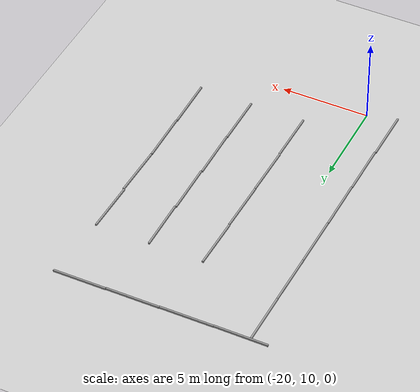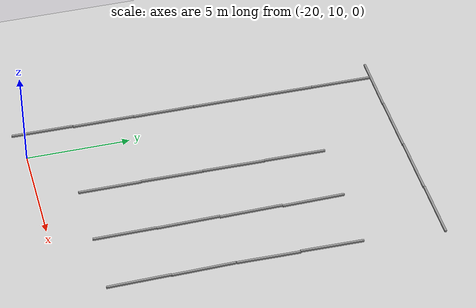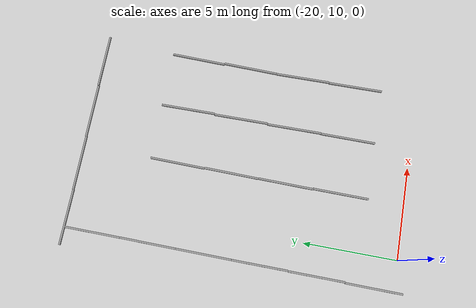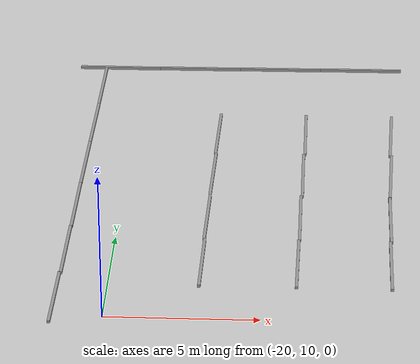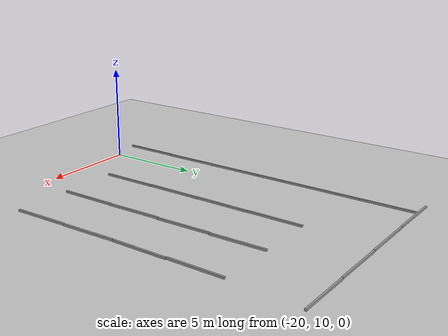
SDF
<sdf version="1.6">
 <world name="default">
  <model name="ground_plane">
   <static>1</static>
   <link name="link">
    <collision name="collision">
     <geometry><plane><normal>0 0 1</normal><size>100 100</size></plane></geometry>
     <surface>
      <contact><collide_bitmask>65535</collide_bitmask></contact>
      <friction><ode><mu>100</mu><mu2>50</mu2></ode></friction>
     </surface>
    </collision>
    <visual name="visual">
     <cast_shadows>0</cast_shadows>
     <geometry><plane><normal>0 0 1</normal><size>100 100</size></plane></geometry>
     <material>
      <script><uri>file://media/materials/scripts/gazebo.material</uri><name>Gazebo/Grey</name></script>
     </material>
    </visual>
   </link>
  </model>
  <model name="ruler_y_0_clone_clone_clone">
   <link name="link_2">
    <inertial>
     <mass>1</mass>
     <inertia>
      <ixx>0.166667</ixx>
      <ixy>0</ixy>
      <ixz>0</ixz>
      <iyy>0.166667</iyy>
      <iyz>0</iyz>
      <izz>0.166667</izz>
     </inertia>
    </inertial>
    <visual name="visual">
     <geometry><box><size>0.1 3 0.1</size></box></geometry>
     <material>
      <lighting>1</lighting>
      <script><uri>file://media/materials/scripts/gazebo.material</uri><name>Gazebo/Grey</name></script>
      <shader type="vertex"><normal_map>__default__</normal_map></shader>
      <ambient>0.3 0.3 0.3 1</ambient>
      <diffuse>0.7 0.7 0.7 1</diffuse>
      <specular>0.01 0.01 0.01 1</specular>
      <emissive>0 0 0 1</emissive>
     </material>
    </visual>
    <collision name="collision">
     <geometry><box><size>0.1 3 0.1</size></box></geometry>
     <surface>
      <friction>
       <ode><mu>1</mu><mu2>1</mu2><fdir1>0 0 0</fdir1><slip1>0</slip1><slip2>0</slip2></ode>
       <torsional>
        <coefficient>1</coefficient>
        <patch_radius>0</patch_radius>
        <surface_radius>0</surface_radius>
        <use_patch_radius>1</use_patch_radius>
        <ode><slip>0</slip></ode>
       </torsional>
      </friction>
      <bounce><restitution_coefficient>0</restitution_coefficient><threshold>1e+06</threshold></bounce>
      <contact>
       <collide_without_contact>0</collide_without_contact>
       <collide_without_contact_bitmask>1</collide_without_contact_bitmask>
       <collide_bitmask>1</collide_bitmask>
       <ode>
        <soft_cfm>0</soft_cfm>
        <soft_erp>0.2</soft_erp>
        <kp>1e+13</kp>
        <kd>1</kd>
        <max_vel>0.01</max_vel>
        <min_depth>0</min_depth>
       </ode>
       <bullet>
        <split_impulse>1</split_impulse>
        <split_impulse_penetration_threshold>-0.01</split_impulse_penetration_threshold>
        <soft_cfm>0</soft_cfm>
        <soft_erp>0.2</soft_erp>
        <kp>1e+13</kp>
        <kd>1</kd>
       </bullet>
      </contact>
     </surface>
    </collision>
   </link>
   <static>0</static>
   <plugin name="ruler_y" filename="ruler_y"/>
   <pose>-10.8644 13.4285 0.049602 -0.000266 6e-06 0.008758</pose>
  </model>
  <model name="ruler_y_0_clone_clone_clone_clone">
   <link name="link_2">
    <inertial>
     <mass>1</mass>
     <inertia>
      <ixx>0.166667</ixx>
      <ixy>0</ixy>
      <ixz>0</ixz>
      <iyy>0.166667</iyy>
      <iyz>0</iyz>
      <izz>0.166667</izz>
     </inertia>
    </inertial>
    <visual name="visual">
     <geometry><box><size>0.1 3 0.1</size></box></geometry>
     <material>
      <lighting>1</lighting>
      <script><uri>file://media/materials/scripts/gazebo.material</uri><name>Gazebo/Grey</name></script>
      <shader type="vertex"><normal_map>__default__</normal_map></shader>
      <ambient>0.3 0.3 0.3 1</ambient>
      <diffuse>0.7 0.7 0.7 1</diffuse>
      <specular>0.01 0.01 0.01 1</specular>
      <emissive>0 0 0 1</emissive>
     </material>
    </visual>
    <collision name="collision">
     <geometry><box><size>0.1 3 0.1</size></box></geometry>
     <surface>
      <friction>
       <ode><mu>1</mu><mu2>1</mu2><fdir1>0 0 0</fdir1><slip1>0</slip1><slip2>0</slip2></ode>
       <torsional>
        <coefficient>1</coefficient>
        <patch_radius>0</patch_radius>
        <surface_radius>0</surface_radius>
        <use_patch_radius>1</use_patch_radius>
        <ode><slip>0</slip></ode>
       </torsional>
      </friction>
      <bounce><restitution_coefficient>0</restitution_coefficient><threshold>1e+06</threshold></bounce>
      <contact>
       <collide_without_contact>0</collide_without_contact>
       <collide_without_contact_bitmask>1</collide_without_contact_bitmask>
       <collide_bitmask>1</collide_bitmask>
       <ode>
        <soft_cfm>0</soft_cfm>
        <soft_erp>0.2</soft_erp>
        <kp>1e+13</kp>
        <kd>1</kd>
        <max_vel>0.01</max_vel>
        <min_depth>0</min_depth>
       </ode>
       <bullet>
        <split_impulse>1</split_impulse>
        <split_impulse_penetration_threshold>-0.01</split_impulse_penetration_threshold>
        <soft_cfm>0</soft_cfm>
        <soft_erp>0.2</soft_erp>
        <kp>1e+13</kp>
        <kd>1</kd>
       </bullet>
      </contact>
     </surface>
    </collision>
   </link>
   <static>0</static>
   <plugin name="ruler_y" filename="ruler_y"/>
   <pose>-10.8624 16.4287 0.049602 -0.000266 6e-06 0.009491</pose>
  </model>
  <model name="ruler_y_0_clone_clone_clone_clone_clone">
   <link name="link_2">
    <inertial>
     <mass>1</mass>
     <inertia>
      <ixx>0.166667</ixx>
      <ixy>0</ixy>
      <ixz>0</ixz>
      <iyy>0.166667</iyy>
      <iyz>0</iyz>
      <izz>0.166667</izz>
     </inertia>
    </inertial>
    <visual name="visual">
     <geometry><box><size>0.1 3 0.1</size></box></geometry>
     <material>
      <lighting>1</lighting>
      <script><uri>file://media/materials/scripts/gazebo.material</uri><name>Gazebo/Grey</name></script>
      <shader type="vertex"><normal_map>__default__</normal_map></shader>
      <ambient>0.3 0.3 0.3 1</ambient>
      <diffuse>0.7 0.7 0.7 1</diffuse>
      <specular>0.01 0.01 0.01 1</specular>
      <emissive>0 0 0 1</emissive>
     </material>
    </visual>
    <collision name="collision">
     <geometry><box><size>0.1 3 0.1</size></box></geometry>
     <surface>
      <friction>
       <ode><mu>1</mu><mu2>1</mu2><fdir1>0 0 0</fdir1><slip1>0</slip1><slip2>0</slip2></ode>
       <torsional>
        <coefficient>1</coefficient>
        <patch_radius>0</patch_radius>
        <surface_radius>0</surface_radius>
        <use_patch_radius>1</use_patch_radius>
        <ode><slip>0</slip></ode>
       </torsional>
      </friction>
      <bounce><restitution_coefficient>0</restitution_coefficient><threshold>1e+06</threshold></bounce>
      <contact>
       <collide_without_contact>0</collide_without_contact>
       <collide_without_contact_bitmask>1</collide_without_contact_bitmask>
       <collide_bitmask>1</collide_bitmask>
       <ode>
        <soft_cfm>0</soft_cfm>
        <soft_erp>0.2</soft_erp>
        <kp>1e+13</kp>
        <kd>1</kd>
        <max_vel>0.01</max_vel>
        <min_depth>0</min_depth>
       </ode>
       <bullet>
        <split_impulse>1</split_impulse>
        <split_impulse_penetration_threshold>-0.01</split_impulse_penetration_threshold>
        <soft_cfm>0</soft_cfm>
        <soft_erp>0.2</soft_erp>
        <kp>1e+13</kp>
        <kd>1</kd>
       </bullet>
      </contact>
     </surface>
    </collision>
   </link>
   <static>0</static>
   <plugin name="ruler_y" filename="ruler_y"/>
   <pose>-10.8269 19.4488 0.049602 0.000266 6e-06 -0.02517</pose>
  </model>
  <model name="ruler_y_0_clone_clone_clone_clone_clone_clone">
   <link name="link_2">
    <inertial>
     <mass>1</mass>
     <inertia>
      <ixx>0.166667</ixx>
      <ixy>0</ixy>
      <ixz>0</ixz>
      <iyy>0.166667</iyy>
      <iyz>0</iyz>
      <izz>0.166667</izz>
     </inertia>
    </inertial>
    <visual name="visual">
     <geometry><box><size>0.1 3 0.1</size></box></geometry>
     <material>
      <lighting>1</lighting>
      <script><uri>file://media/materials/scripts/gazebo.material</uri><name>Gazebo/Grey</name></script>
      <shader type="vertex"><normal_map>__default__</normal_map></shader>
      <ambient>0.3 0.3 0.3 1</ambient>
      <diffuse>0.7 0.7 0.7 1</diffuse>
      <specular>0.01 0.01 0.01 1</specular>
      <emissive>0 0 0 1</emissive>
     </material>
    </visual>
    <collision name="collision">
     <geometry><box><size>0.1 3 0.1</size></box></geometry>
     <surface>
      <friction>
       <ode><mu>1</mu><mu2>1</mu2><fdir1>0 0 0</fdir1><slip1>0</slip1><slip2>0</slip2></ode>
       <torsional>
        <coefficient>1</coefficient>
        <patch_radius>0</patch_radius>
        <surface_radius>0</surface_radius>
        <use_patch_radius>1</use_patch_radius>
        <ode><slip>0</slip></ode>
       </torsional>
      </friction>
      <bounce><restitution_coefficient>0</restitution_coefficient><threshold>1e+06</threshold></bounce>
      <contact>
       <collide_without_contact>0</collide_without_contact>
       <collide_without_contact_bitmask>1</collide_without_contact_bitmask>
       <collide_bitmask>1</collide_bitmask>
       <ode>
        <soft_cfm>0</soft_cfm>
        <soft_erp>0.2</soft_erp>
        <kp>1e+13</kp>
        <kd>1</kd>
        <max_vel>0.01</max_vel>
        <min_depth>0</min_depth>
       </ode>
       <bullet>
        <split_impulse>1</split_impulse>
        <split_impulse_penetration_threshold>-0.01</split_impulse_penetration_threshold>
        <soft_cfm>0</soft_cfm>
        <soft_erp>0.2</soft_erp>
        <kp>1e+13</kp>
        <kd>1</kd>
       </bullet>
      </contact>
     </surface>
    </collision>
   </link>
   <static>0</static>
   <plugin name="ruler_y" filename="ruler_y"/>
   <pose>-10.8 22.4556 0.049602 -0.000266 -6e-06 -0.024914</pose>
  </model>
  <model name="ruler_y_0_clone_0_clone_clone_clone">
   <link name="link_2">
    <inertial>
     <mass>1</mass>
     <inertia>
      <ixx>0.166667</ixx>
      <ixy>0</ixy>
      <ixz>0</ixz>
      <iyy>0.166667</iyy>
      <iyz>0</iyz>
      <izz>0.166667</izz>
     </inertia>
    </inertial>
    <visual name="visual">
     <geometry><box><size>0.1 3 0.1</size></box></geometry>
     <material>
      <lighting>1</lighting>
      <script><uri>file://media/materials/scripts/gazebo.material</uri><name>Gazebo/Grey</name></script>
      <shader type="vertex"><normal_map>__default__</normal_map></shader>
      <ambient>0.3 0.3 0.3 1</ambient>
      <diffuse>0.7 0.7 0.7 1</diffuse>
      <specular>0.01 0.01 0.01 1</specular>
      <emissive>0 0 0 1</emissive>
     </material>
    </visual>
    <collision name="collision">
     <geometry><box><size>0.1 3 0.1</size></box></geometry>
     <surface>
      <friction>
       <ode><mu>1</mu><mu2>1</mu2><fdir1>0 0 0</fdir1><slip1>0</slip1><slip2>0</slip2></ode>
       <torsional>
        <coefficient>1</coefficient>
        <patch_radius>0</patch_radius>
        <surface_radius>0</surface_radius>
        <use_patch_radius>1</use_patch_radius>
        <ode><slip>0</slip></ode>
       </torsional>
      </friction>
      <bounce><restitution_coefficient>0</restitution_coefficient><threshold>1e+06</threshold></bounce>
      <contact>
       <collide_without_contact>0</collide_without_contact>
       <collide_without_contact_bitmask>1</collide_without_contact_bitmask>
       <collide_bitmask>1</collide_bitmask>
       <ode>
        <soft_cfm>0</soft_cfm>
        <soft_erp>0.2</soft_erp>
        <kp>1e+13</kp>
        <kd>1</kd>
        <max_vel>0.01</max_vel>
        <min_depth>0</min_depth>
       </ode>
       <bullet>
        <split_impulse>1</split_impulse>
        <split_impulse_penetration_threshold>-0.01</split_impulse_penetration_threshold>
        <soft_cfm>0</soft_cfm>
        <soft_erp>0.2</soft_erp>
        <kp>1e+13</kp>
        <kd>1</kd>
       </bullet>
      </contact>
     </surface>
    </collision>
   </link>
   <static>0</static>
   <plugin name="ruler_y" filename="ruler_y"/>
   <pose>-13.9163 13.4405 0.049602 -0.000266 6e-06 -0.003403</pose>
  </model>
  <model name="ruler_y_0_clone_0_clone_clone_clone_clone">
   <link name="link_2">
    <inertial>
     <mass>1</mass>
     <inertia>
      <ixx>0.166667</ixx>
      <ixy>0</ixy>
      <ixz>0</ixz>
      <iyy>0.166667</iyy>
      <iyz>0</iyz>
      <izz>0.166667</izz>
     </inertia>
    </inertial>
    <visual name="visual">
     <geometry><box><size>0.1 3 0.1</size></box></geometry>
     <material>
      <lighting>1</lighting>
      <script><uri>file://media/materials/scripts/gazebo.material</uri><name>Gazebo/Grey</name></script>
      <shader type="vertex"><normal_map>__default__</normal_map></shader>
      <ambient>0.3 0.3 0.3 1</ambient>
      <diffuse>0.7 0.7 0.7 1</diffuse>
      <specular>0.01 0.01 0.01 1</specular>
      <emissive>0 0 0 1</emissive>
     </material>
    </visual>
    <collision name="collision">
     <geometry><box><size>0.1 3 0.1</size></box></geometry>
     <surface>
      <friction>
       <ode><mu>1</mu><mu2>1</mu2><fdir1>0 0 0</fdir1><slip1>0</slip1><slip2>0</slip2></ode>
       <torsional>
        <coefficient>1</coefficient>
        <patch_radius>0</patch_radius>
        <surface_radius>0</surface_radius>
        <use_patch_radius>1</use_patch_radius>
        <ode><slip>0</slip></ode>
       </torsional>
      </friction>
      <bounce><restitution_coefficient>0</restitution_coefficient><threshold>1e+06</threshold></bounce>
      <contact>
       <collide_without_contact>0</collide_without_contact>
       <collide_without_contact_bitmask>1</collide_without_contact_bitmask>
       <collide_bitmask>1</collide_bitmask>
       <ode>
        <soft_cfm>0</soft_cfm>
        <soft_erp>0.2</soft_erp>
        <kp>1e+13</kp>
        <kd>1</kd>
        <max_vel>0.01</max_vel>
        <min_depth>0</min_depth>
       </ode>
       <bullet>
        <split_impulse>1</split_impulse>
        <split_impulse_penetration_threshold>-0.01</split_impulse_penetration_threshold>
        <soft_cfm>0</soft_cfm>
        <soft_erp>0.2</soft_erp>
        <kp>1e+13</kp>
        <kd>1</kd>
       </bullet>
      </contact>
     </surface>
    </collision>
   </link>
   <static>0</static>
   <plugin name="ruler_y" filename="ruler_y"/>
   <pose>-13.898 16.4429 0.049602 0.000266 -6e-06 0.006238</pose>
  </model>
  <model name="ruler_y_0_clone_0_clone_clone_clone_clone_clone">
   <link name="link_2">
    <inertial>
     <mass>1</mass>
     <inertia>
      <ixx>0.166667</ixx>
      <ixy>0</ixy>
      <ixz>0</ixz>
      <iyy>0.166667</iyy>
      <iyz>0</iyz>
      <izz>0.166667</izz>
     </inertia>
    </inertial>
    <visual name="visual">
     <geometry><box><size>0.1 3 0.1</size></box></geometry>
     <material>
      <lighting>1</lighting>
      <script><uri>file://media/materials/scripts/gazebo.material</uri><name>Gazebo/Grey</name></script>
      <shader type="vertex"><normal_map>__default__</normal_map></shader>
      <ambient>0.3 0.3 0.3 1</ambient>
      <diffuse>0.7 0.7 0.7 1</diffuse>
      <specular>0.01 0.01 0.01 1</specular>
      <emissive>0 0 0 1</emissive>
     </material>
    </visual>
    <collision name="collision">
     <geometry><box><size>0.1 3 0.1</size></box></geometry>
     <surface>
      <friction>
       <ode><mu>1</mu><mu2>1</mu2><fdir1>0 0 0</fdir1><slip1>0</slip1><slip2>0</slip2></ode>
       <torsional>
        <coefficient>1</coefficient>
        <patch_radius>0</patch_radius>
        <surface_radius>0</surface_radius>
        <use_patch_radius>1</use_patch_radius>
        <ode><slip>0</slip></ode>
       </torsional>
      </friction>
      <bounce><restitution_coefficient>0</restitution_coefficient><threshold>1e+06</threshold></bounce>
      <contact>
       <collide_without_contact>0</collide_without_contact>
       <collide_without_contact_bitmask>1</collide_without_contact_bitmask>
       <collide_bitmask>1</collide_bitmask>
       <ode>
        <soft_cfm>0</soft_cfm>
        <soft_erp>0.2</soft_erp>
        <kp>1e+13</kp>
        <kd>1</kd>
        <max_vel>0.01</max_vel>
        <min_depth>0</min_depth>
       </ode>
       <bullet>
        <split_impulse>1</split_impulse>
        <split_impulse_penetration_threshold>-0.01</split_impulse_penetration_threshold>
        <soft_cfm>0</soft_cfm>
        <soft_erp>0.2</soft_erp>
        <kp>1e+13</kp>
        <kd>1</kd>
       </bullet>
      </contact>
     </surface>
    </collision>
   </link>
   <static>0</static>
   <plugin name="ruler_y" filename="ruler_y"/>
   <pose>-13.8712 19.4478 0.049602 0.000266 -6e-06 0.006238</pose>
  </model>
  <model name="ruler_y_0_clone_0_clone_clone_clone_clone_clone_clone">
   <link name="link_2">
    <inertial>
     <mass>1</mass>
     <inertia>
      <ixx>0.166667</ixx>
      <ixy>0</ixy>
      <ixz>0</ixz>
      <iyy>0.166667</iyy>
      <iyz>0</iyz>
      <izz>0.166667</izz>
     </inertia>
    </inertial>
    <visual name="visual">
     <geometry><box><size>0.1 3 0.1</size></box></geometry>
     <material>
      <lighting>1</lighting>
      <script><uri>file://media/materials/scripts/gazebo.material</uri><name>Gazebo/Grey</name></script>
      <shader type="vertex"><normal_map>__default__</normal_map></shader>
      <ambient>0.3 0.3 0.3 1</ambient>
      <diffuse>0.7 0.7 0.7 1</diffuse>
      <specular>0.01 0.01 0.01 1</specular>
      <emissive>0 0 0 1</emissive>
     </material>
    </visual>
    <collision name="collision">
     <geometry><box><size>0.1 3 0.1</size></box></geometry>
     <surface>
      <friction>
       <ode><mu>1</mu><mu2>1</mu2><fdir1>0 0 0</fdir1><slip1>0</slip1><slip2>0</slip2></ode>
       <torsional>
        <coefficient>1</coefficient>
        <patch_radius>0</patch_radius>
        <surface_radius>0</surface_radius>
        <use_patch_radius>1</use_patch_radius>
        <ode><slip>0</slip></ode>
       </torsional>
      </friction>
      <bounce><restitution_coefficient>0</restitution_coefficient><threshold>1e+06</threshold></bounce>
      <contact>
       <collide_without_contact>0</collide_without_contact>
       <collide_without_contact_bitmask>1</collide_without_contact_bitmask>
       <collide_bitmask>1</collide_bitmask>
       <ode>
        <soft_cfm>0</soft_cfm>
        <soft_erp>0.2</soft_erp>
        <kp>1e+13</kp>
        <kd>1</kd>
        <max_vel>0.01</max_vel>
        <min_depth>0</min_depth>
       </ode>
       <bullet>
        <split_impulse>1</split_impulse>
        <split_impulse_penetration_threshold>-0.01</split_impulse_penetration_threshold>
        <soft_cfm>0</soft_cfm>
        <soft_erp>0.2</soft_erp>
        <kp>1e+13</kp>
        <kd>1</kd>
       </bullet>
      </contact>
     </surface>
    </collision>
   </link>
   <static>0</static>
   <plugin name="ruler_y" filename="ruler_y"/>
   <pose>-13.8431 22.4501 0.049602 0.000266 -6e-06 0.006238</pose>
  </model>
  <model name="ruler_y_0_clone_0_clone_0_clone_clone_clone">
   <link name="link_2">
    <inertial>
     <mass>1</mass>
     <inertia>
      <ixx>0.166667</ixx>
      <ixy>0</ixy>
      <ixz>0</ixz>
      <iyy>0.166667</iyy>
      <iyz>0</iyz>
      <izz>0.166667</izz>
     </inertia>
    </inertial>
    <visual name="visual">
     <geometry><box><size>0.1 3 0.1</size></box></geometry>
     <material>
      <lighting>1</lighting>
      <script><uri>file://media/materials/scripts/gazebo.material</uri><name>Gazebo/Grey</name></script>
      <shader type="vertex"><normal_map>__default__</normal_map></shader>
      <ambient>0.3 0.3 0.3 1</ambient>
      <diffuse>0.7 0.7 0.7 1</diffuse>
      <specular>0.01 0.01 0.01 1</specular>
      <emissive>0 0 0 1</emissive>
     </material>
    </visual>
    <collision name="collision">
     <geometry><box><size>0.1 3 0.1</size></box></geometry>
     <surface>
      <friction>
       <ode><mu>1</mu><mu2>1</mu2><fdir1>0 0 0</fdir1><slip1>0</slip1><slip2>0</slip2></ode>
       <torsional>
        <coefficient>1</coefficient>
        <patch_radius>0</patch_radius>
        <surface_radius>0</surface_radius>
        <use_patch_radius>1</use_patch_radius>
        <ode><slip>0</slip></ode>
       </torsional>
      </friction>
      <bounce><restitution_coefficient>0</restitution_coefficient><threshold>1e+06</threshold></bounce>
      <contact>
       <collide_without_contact>0</collide_without_contact>
       <collide_without_contact_bitmask>1</collide_without_contact_bitmask>
       <collide_bitmask>1</collide_bitmask>
       <ode>
        <soft_cfm>0</soft_cfm>
        <soft_erp>0.2</soft_erp>
        <kp>1e+13</kp>
        <kd>1</kd>
        <max_vel>0.01</max_vel>
        <min_depth>0</min_depth>
       </ode>
       <bullet>
        <split_impulse>1</split_impulse>
        <split_impulse_penetration_threshold>-0.01</split_impulse_penetration_threshold>
        <soft_cfm>0</soft_cfm>
        <soft_erp>0.2</soft_erp>
        <kp>1e+13</kp>
        <kd>1</kd>
       </bullet>
      </contact>
     </surface>
    </collision>
   </link>
   <static>0</static>
   <plugin name="ruler_y" filename="ruler_y"/>
   <pose>-17.0442 13.4108 0.049602 0.000266 6e-06 -0.009334</pose>
  </model>
  <model name="ruler_y_0_clone_0_clone_clone_clone_clone_0">
   <link name="link_2">
    <inertial>
     <mass>1</mass>
     <inertia>
      <ixx>0.166667</ixx>
      <ixy>0</ixy>
      <ixz>0</ixz>
      <iyy>0.166667</iyy>
      <iyz>0</iyz>
      <izz>0.166667</izz>
     </inertia>
    </inertial>
    <visual name="visual">
     <geometry><box><size>0.1 3 0.1</size></box></geometry>
     <material>
      <lighting>1</lighting>
      <script><uri>file://media/materials/scripts/gazebo.material</uri><name>Gazebo/Grey</name></script>
      <shader type="vertex"><normal_map>__default__</normal_map></shader>
      <ambient>0.3 0.3 0.3 1</ambient>
      <diffuse>0.7 0.7 0.7 1</diffuse>
      <specular>0.01 0.01 0.01 1</specular>
      <emissive>0 0 0 1</emissive>
     </material>
    </visual>
    <collision name="collision">
     <geometry><box><size>0.1 3 0.1</size></box></geometry>
     <surface>
      <friction>
       <ode><mu>1</mu><mu2>1</mu2><fdir1>0 0 0</fdir1><slip1>0</slip1><slip2>0</slip2></ode>
       <torsional>
        <coefficient>1</coefficient>
        <patch_radius>0</patch_radius>
        <surface_radius>0</surface_radius>
        <use_patch_radius>1</use_patch_radius>
        <ode><slip>0</slip></ode>
       </torsional>
      </friction>
      <bounce><restitution_coefficient>0</restitution_coefficient><threshold>1e+06</threshold></bounce>
      <contact>
       <collide_without_contact>0</collide_without_contact>
       <collide_without_contact_bitmask>1</collide_without_contact_bitmask>
       <collide_bitmask>1</collide_bitmask>
       <ode>
        <soft_cfm>0</soft_cfm>
        <soft_erp>0.2</soft_erp>
        <kp>1e+13</kp>
        <kd>1</kd>
        <max_vel>0.01</max_vel>
        <min_depth>0</min_depth>
       </ode>
       <bullet>
        <split_impulse>1</split_impulse>
        <split_impulse_penetration_threshold>-0.01</split_impulse_penetration_threshold>
        <soft_cfm>0</soft_cfm>
        <soft_erp>0.2</soft_erp>
        <kp>1e+13</kp>
        <kd>1</kd>
       </bullet>
      </contact>
     </surface>
    </collision>
   </link>
   <static>0</static>
   <plugin name="ruler_y" filename="ruler_y"/>
   <pose>-17.0316 16.4112 0.049602 -0.000266 -6e-06 -0.016203</pose>
  </model>
  <model name="ruler_y_0_clone_0_clone_clone_clone_clone_0_clone">
   <link name="link_2">
    <inertial>
     <mass>1</mass>
     <inertia>
      <ixx>0.166667</ixx>
      <ixy>0</ixy>
      <ixz>0</ixz>
      <iyy>0.166667</iyy>
      <iyz>0</iyz>
      <izz>0.166667</izz>
     </inertia>
    </inertial>
    <visual name="visual">
     <geometry><box><size>0.1 3 0.1</size></box></geometry>
     <material>
      <lighting>1</lighting>
      <script><uri>file://media/materials/scripts/gazebo.material</uri><name>Gazebo/Grey</name></script>
      <shader type="vertex"><normal_map>__default__</normal_map></shader>
      <ambient>0.3 0.3 0.3 1</ambient>
      <diffuse>0.7 0.7 0.7 1</diffuse>
      <specular>0.01 0.01 0.01 1</specular>
      <emissive>0 0 0 1</emissive>
     </material>
    </visual>
    <collision name="collision">
     <geometry><box><size>0.1 3 0.1</size></box></geometry>
     <surface>
      <friction>
       <ode><mu>1</mu><mu2>1</mu2><fdir1>0 0 0</fdir1><slip1>0</slip1><slip2>0</slip2></ode>
       <torsional>
        <coefficient>1</coefficient>
        <patch_radius>0</patch_radius>
        <surface_radius>0</surface_radius>
        <use_patch_radius>1</use_patch_radius>
        <ode><slip>0</slip></ode>
       </torsional>
      </friction>
      <bounce><restitution_coefficient>0</restitution_coefficient><threshold>1e+06</threshold></bounce>
      <contact>
       <collide_without_contact>0</collide_without_contact>
       <collide_without_contact_bitmask>1</collide_without_contact_bitmask>
       <collide_bitmask>1</collide_bitmask>
       <ode>
        <soft_cfm>0</soft_cfm>
        <soft_erp>0.2</soft_erp>
        <kp>1e+13</kp>
        <kd>1</kd>
        <max_vel>0.01</max_vel>
        <min_depth>0</min_depth>
       </ode>
       <bullet>
        <split_impulse>1</split_impulse>
        <split_impulse_penetration_threshold>-0.01</split_impulse_penetration_threshold>
        <soft_cfm>0</soft_cfm>
        <soft_erp>0.2</soft_erp>
        <kp>1e+13</kp>
        <kd>1</kd>
       </bullet>
      </contact>
     </surface>
    </collision>
   </link>
   <static>0</static>
   <plugin name="ruler_y" filename="ruler_y"/>
   <pose>-16.9929 19.4112 0.049602 -0.000266 -6e-06 -0.019429</pose>
  </model>
  <model name="ruler_y_0_clone_0_clone_clone_clone_clone_0_clone_clone">
   <link name="link_2">
    <inertial>
     <mass>1</mass>
     <inertia>
      <ixx>0.166667</ixx>
      <ixy>0</ixy>
      <ixz>0</ixz>
      <iyy>0.166667</iyy>
      <iyz>0</iyz>
      <izz>0.166667</izz>
     </inertia>
    </inertial>
    <visual name="visual">
     <geometry><box><size>0.1 3 0.1</size></box></geometry>
     <material>
      <lighting>1</lighting>
      <script><uri>file://media/materials/scripts/gazebo.material</uri><name>Gazebo/Grey</name></script>
      <shader type="vertex"><normal_map>__default__</normal_map></shader>
      <ambient>0.3 0.3 0.3 1</ambient>
      <diffuse>0.7 0.7 0.7 1</diffuse>
      <specular>0.01 0.01 0.01 1</specular>
      <emissive>0 0 0 1</emissive>
     </material>
    </visual>
    <collision name="collision">
     <geometry><box><size>0.1 3 0.1</size></box></geometry>
     <surface>
      <friction>
       <ode><mu>1</mu><mu2>1</mu2><fdir1>0 0 0</fdir1><slip1>0</slip1><slip2>0</slip2></ode>
       <torsional>
        <coefficient>1</coefficient>
        <patch_radius>0</patch_radius>
        <surface_radius>0</surface_radius>
        <use_patch_radius>1</use_patch_radius>
        <ode><slip>0</slip></ode>
       </torsional>
      </friction>
      <bounce><restitution_coefficient>0</restitution_coefficient><threshold>1e+06</threshold></bounce>
      <contact>
       <collide_without_contact>0</collide_without_contact>
       <collide_without_contact_bitmask>1</collide_without_contact_bitmask>
       <collide_bitmask>1</collide_bitmask>
       <ode>
        <soft_cfm>0</soft_cfm>
        <soft_erp>0.2</soft_erp>
        <kp>1e+13</kp>
        <kd>1</kd>
        <max_vel>0.01</max_vel>
        <min_depth>0</min_depth>
       </ode>
       <bullet>
        <split_impulse>1</split_impulse>
        <split_impulse_penetration_threshold>-0.01</split_impulse_penetration_threshold>
        <soft_cfm>0</soft_cfm>
        <soft_erp>0.2</soft_erp>
        <kp>1e+13</kp>
        <kd>1</kd>
       </bullet>
      </contact>
     </surface>
    </collision>
   </link>
   <static>0</static>
   <plugin name="ruler_y" filename="ruler_y"/>
   <pose>-16.9594 22.4134 0.049602 0.000266 6e-06 -0.018934</pose>
  </model>
  <model name="ruler_clone_clone_clone_clone_clone_0_clone_clone_0">
   <link name="link_1">
    <inertial>
     <mass>1</mass>
     <inertia>
      <ixx>0.166667</ixx>
      <ixy>0</ixy>
      <ixz>0</ixz>
      <iyy>0.166667</iyy>
      <iyz>0</iyz>
      <izz>0.166667</izz>
     </inertia>
    </inertial>
    <visual name="visual">
     <geometry><box><size>3 0.1 0.1</size></box></geometry>
     <material>
      <lighting>1</lighting>
      <script><uri>file://media/materials/scripts/gazebo.material</uri><name>Gazebo/Grey</name></script>
      <shader type="vertex"><normal_map>__default__</normal_map></shader>
      <ambient>0.3 0.3 0.3 1</ambient>
      <diffuse>0.7 0.7 0.7 1</diffuse>
      <specular>0.01 0.01 0.01 1</specular>
      <emissive>0 0 0 1</emissive>
     </material>
    </visual>
    <collision name="collision">
     <geometry><box><size>3 0.1 0.1</size></box></geometry>
     <surface>
      <friction>
       <ode><mu>1</mu><mu2>1</mu2><fdir1>0 0 0</fdir1><slip1>0</slip1><slip2>0</slip2></ode>
       <torsional>
        <coefficient>1</coefficient>
        <patch_radius>0</patch_radius>
        <surface_radius>0</surface_radius>
        <use_patch_radius>1</use_patch_radius>
        <ode><slip>0</slip></ode>
       </torsional>
      </friction>
      <bounce><restitution_coefficient>0</restitution_coefficient><threshold>1e+06</threshold></bounce>
      <contact>
       <collide_without_contact>0</collide_without_contact>
       <collide_without_contact_bitmask>1</collide_without_contact_bitmask>
       <collide_bitmask>1</collide_bitmask>
       <ode>
        <soft_cfm>0</soft_cfm>
        <soft_erp>0.2</soft_erp>
        <kp>1e+13</kp>
        <kd>1</kd>
        <max_vel>0.01</max_vel>
        <min_depth>0</min_depth>
       </ode>
       <bullet>
        <split_impulse>1</split_impulse>
        <split_impulse_penetration_threshold>-0.01</split_impulse_penetration_threshold>
        <soft_cfm>0</soft_cfm>
        <soft_erp>0.2</soft_erp>
        <kp>1e+13</kp>
        <kd>1</kd>
       </bullet>
      </contact>
     </surface>
    </collision>
   </link>
   <static>0</static>
   <pose>-11.8788 27.7543 0.049602 -6e-06 0.000266 0.008938</pose>
  </model>
  <model name="ruler_clone_clone_clone_clone_clone_0_clone_clone_1">
   <link name="link_1">
    <inertial>
     <mass>1</mass>
     <inertia>
      <ixx>0.166667</ixx>
      <ixy>0</ixy>
      <ixz>0</ixz>
      <iyy>0.166667</iyy>
      <iyz>0</iyz>
      <izz>0.166667</izz>
     </inertia>
    </inertial>
    <visual name="visual">
     <geometry><box><size>3 0.1 0.1</size></box></geometry>
     <material>
      <lighting>1</lighting>
      <script><uri>file://media/materials/scripts/gazebo.material</uri><name>Gazebo/Grey</name></script>
      <shader type="vertex"><normal_map>__default__</normal_map></shader>
      <ambient>0.3 0.3 0.3 1</ambient>
      <diffuse>0.7 0.7 0.7 1</diffuse>
      <specular>0.01 0.01 0.01 1</specular>
      <emissive>0 0 0 1</emissive>
     </material>
    </visual>
    <collision name="collision">
     <geometry><box><size>3 0.1 0.1</size></box></geometry>
     <surface>
      <friction>
       <ode><mu>1</mu><mu2>1</mu2><fdir1>0 0 0</fdir1><slip1>0</slip1><slip2>0</slip2></ode>
       <torsional>
        <coefficient>1</coefficient>
        <patch_radius>0</patch_radius>
        <surface_radius>0</surface_radius>
        <use_patch_radius>1</use_patch_radius>
        <ode><slip>0</slip></ode>
       </torsional>
      </friction>
      <bounce><restitution_coefficient>0</restitution_coefficient><threshold>1e+06</threshold></bounce>
      <contact>
       <collide_without_contact>0</collide_without_contact>
       <collide_without_contact_bitmask>1</collide_without_contact_bitmask>
       <collide_bitmask>1</collide_bitmask>
       <ode>
        <soft_cfm>0</soft_cfm>
        <soft_erp>0.2</soft_erp>
        <kp>1e+13</kp>
        <kd>1</kd>
        <max_vel>0.01</max_vel>
        <min_depth>0</min_depth>
       </ode>
       <bullet>
        <split_impulse>1</split_impulse>
        <split_impulse_penetration_threshold>-0.01</split_impulse_penetration_threshold>
        <soft_cfm>0</soft_cfm>
        <soft_erp>0.2</soft_erp>
        <kp>1e+13</kp>
        <kd>1</kd>
       </bullet>
      </contact>
     </surface>
    </collision>
   </link>
   <static>0</static>
   <pose>-14.8904 27.7041 0.049602 6e-06 -0.000266 0.00906</pose>
  </model>
  <model name="ruler_clone_clone_clone_clone_clone_0_clone_clone_1_clone">
   <link name="link_1">
    <inertial>
     <mass>1</mass>
     <inertia>
      <ixx>0.166667</ixx>
      <ixy>0</ixy>
      <ixz>0</ixz>
      <iyy>0.166667</iyy>
      <iyz>0</iyz>
      <izz>0.166667</izz>
     </inertia>
    </inertial>
    <visual name="visual">
     <geometry><box><size>3 0.1 0.1</size></box></geometry>
     <material>
      <lighting>1</lighting>
      <script><uri>file://media/materials/scripts/gazebo.material</uri><name>Gazebo/Grey</name></script>
      <shader type="vertex"><normal_map>__default__</normal_map></shader>
      <ambient>0.3 0.3 0.3 1</ambient>
      <diffuse>0.7 0.7 0.7 1</diffuse>
      <specular>0.01 0.01 0.01 1</specular>
      <emissive>0 0 0 1</emissive>
     </material>
    </visual>
    <collision name="collision">
     <geometry><box><size>3 0.1 0.1</size></box></geometry>
     <surface>
      <friction>
       <ode><mu>1</mu><mu2>1</mu2><fdir1>0 0 0</fdir1><slip1>0</slip1><slip2>0</slip2></ode>
       <torsional>
        <coefficient>1</coefficient>
        <patch_radius>0</patch_radius>
        <surface_radius>0</surface_radius>
        <use_patch_radius>1</use_patch_radius>
        <ode><slip>0</slip></ode>
       </torsional>
      </friction>
      <bounce><restitution_coefficient>0</restitution_coefficient><threshold>1e+06</threshold></bounce>
      <contact>
       <collide_without_contact>0</collide_without_contact>
       <collide_without_contact_bitmask>1</collide_without_contact_bitmask>
       <collide_bitmask>1</collide_bitmask>
       <ode>
        <soft_cfm>0</soft_cfm>
        <soft_erp>0.2</soft_erp>
        <kp>1e+13</kp>
        <kd>1</kd>
        <max_vel>0.01</max_vel>
        <min_depth>0</min_depth>
       </ode>
       <bullet>
        <split_impulse>1</split_impulse>
        <split_impulse_penetration_threshold>-0.01</split_impulse_penetration_threshold>
        <soft_cfm>0</soft_cfm>
        <soft_erp>0.2</soft_erp>
        <kp>1e+13</kp>
        <kd>1</kd>
       </bullet>
      </contact>
     </surface>
    </collision>
   </link>
   <static>0</static>
   <pose>-17.897 27.6558 0.049602 6e-06 -0.000266 0.00907</pose>
  </model>
  <model name="ruler_clone_clone_clone_clone_clone_0_clone_clone_1_clone_clone_0">
   <link name="link_1">
    <inertial>
     <mass>1</mass>
     <inertia>
      <ixx>0.166667</ixx>
      <ixy>0</ixy>
      <ixz>0</ixz>
      <iyy>0.166667</iyy>
      <iyz>0</iyz>
      <izz>0.166667</izz>
     </inertia>
    </inertial>
    <visual name="visual">
     <geometry><box><size>3 0.1 0.1</size></box></geometry>
     <material>
      <lighting>1</lighting>
      <script><uri>file://media/materials/scripts/gazebo.material</uri><name>Gazebo/Grey</name></script>
      <shader type="vertex"><normal_map>__default__</normal_map></shader>
      <ambient>0.3 0.3 0.3 1</ambient>
      <diffuse>0.7 0.7 0.7 1</diffuse>
      <specular>0.01 0.01 0.01 1</specular>
      <emissive>0 0 0 1</emissive>
     </material>
    </visual>
    <collision name="collision">
     <geometry><box><size>3 0.1 0.1</size></box></geometry>
     <surface>
      <friction>
       <ode><mu>1</mu><mu2>1</mu2><fdir1>0 0 0</fdir1><slip1>0</slip1><slip2>0</slip2></ode>
       <torsional>
        <coefficient>1</coefficient>
        <patch_radius>0</patch_radius>
        <surface_radius>0</surface_radius>
        <use_patch_radius>1</use_patch_radius>
        <ode><slip>0</slip></ode>
       </torsional>
      </friction>
      <bounce><restitution_coefficient>0</restitution_coefficient><threshold>1e+06</threshold></bounce>
      <contact>
       <collide_without_contact>0</collide_without_contact>
       <collide_without_contact_bitmask>1</collide_without_contact_bitmask>
       <collide_bitmask>1</collide_bitmask>
       <ode>
        <soft_cfm>0</soft_cfm>
        <soft_erp>0.2</soft_erp>
        <kp>1e+13</kp>
        <kd>1</kd>
        <max_vel>0.01</max_vel>
        <min_depth>0</min_depth>
       </ode>
       <bullet>
        <split_impulse>1</split_impulse>
        <split_impulse_penetration_threshold>-0.01</split_impulse_penetration_threshold>
        <soft_cfm>0</soft_cfm>
        <soft_erp>0.2</soft_erp>
        <kp>1e+13</kp>
        <kd>1</kd>
       </bullet>
      </contact>
     </surface>
    </collision>
   </link>
   <static>0</static>
   <pose>-20.8977 27.6216 0.049602 -6e-06 0.000266 0.00231</pose>
  </model>
  <model name="ruler_y_0_clone_0_clone_clone_clone_clone_0_clone_clone_clone">
   <link name="link_2">
    <inertial>
     <mass>1</mass>
     <inertia>
      <ixx>0.166667</ixx>
      <ixy>0</ixy>
      <ixz>0</ixz>
      <iyy>0.166667</iyy>
      <iyz>0</iyz>
      <izz>0.166667</izz>
     </inertia>
    </inertial>
    <visual name="visual">
     <geometry><box><size>0.1 3 0.1</size></box></geometry>
     <material>
      <lighting>1</lighting>
      <script><uri>file://media/materials/scripts/gazebo.material</uri><name>Gazebo/Grey</name></script>
      <shader type="vertex"><normal_map>__default__</normal_map></shader>
      <ambient>0.3 0.3 0.3 1</ambient>
      <diffuse>0.7 0.7 0.7 1</diffuse>
      <specular>0.01 0.01 0.01 1</specular>
      <emissive>0 0 0 1</emissive>
     </material>
    </visual>
    <collision name="collision">
     <geometry><box><size>0.1 3 0.1</size></box></geometry>
     <surface>
      <friction>
       <ode><mu>1</mu><mu2>1</mu2><fdir1>0 0 0</fdir1><slip1>0</slip1><slip2>0</slip2></ode>
       <torsional>
        <coefficient>1</coefficient>
        <patch_radius>0</patch_radius>
        <surface_radius>0</surface_radius>
        <use_patch_radius>1</use_patch_radius>
        <ode><slip>0</slip></ode>
       </torsional>
      </friction>
      <bounce><restitution_coefficient>0</restitution_coefficient><threshold>1e+06</threshold></bounce>
      <contact>
       <collide_without_contact>0</collide_without_contact>
       <collide_without_contact_bitmask>1</collide_without_contact_bitmask>
       <collide_bitmask>1</collide_bitmask>
       <ode>
        <soft_cfm>0</soft_cfm>
        <soft_erp>0.2</soft_erp>
        <kp>1e+13</kp>
        <kd>1</kd>
        <max_vel>0.01</max_vel>
        <min_depth>0</min_depth>
       </ode>
       <bullet>
        <split_impulse>1</split_impulse>
        <split_impulse_penetration_threshold>-0.01</split_impulse_penetration_threshold>
        <soft_cfm>0</soft_cfm>
        <soft_erp>0.2</soft_erp>
        <kp>1e+13</kp>
        <kd>1</kd>
       </bullet>
      </contact>
     </surface>
    </collision>
   </link>
   <static>0</static>
   <plugin name="ruler_y" filename="ruler_y"/>
   <pose>-21.4415 26.0678 0.049602 -0.000266 -6e-06 -0.009691</pose>
  </model>
  <model name="ruler_y_0_clone_0_clone_clone_clone_clone_0_clone_clone_clone_clone">
   <link name="link_2">
    <inertial>
     <mass>1</mass>
     <inertia>
      <ixx>0.166667</ixx>
      <ixy>0</ixy>
      <ixz>0</ixz>
      <iyy>0.166667</iyy>
      <iyz>0</iyz>
      <izz>0.166667</izz>
     </inertia>
    </inertial>
    <visual name="visual">
     <geometry><box><size>0.1 3 0.1</size></box></geometry>
     <material>
      <lighting>1</lighting>
      <script><uri>file://media/materials/scripts/gazebo.material</uri><name>Gazebo/Grey</name></script>
      <shader type="vertex"><normal_map>__default__</normal_map></shader>
      <ambient>0.3 0.3 0.3 1</ambient>
      <diffuse>0.7 0.7 0.7 1</diffuse>
      <specular>0.01 0.01 0.01 1</specular>
      <emissive>0 0 0 1</emissive>
     </material>
    </visual>
    <collision name="collision">
     <geometry><box><size>0.1 3 0.1</size></box></geometry>
     <surface>
      <friction>
       <ode><mu>1</mu><mu2>1</mu2><fdir1>0 0 0</fdir1><slip1>0</slip1><slip2>0</slip2></ode>
       <torsional>
        <coefficient>1</coefficient>
        <patch_radius>0</patch_radius>
        <surface_radius>0</surface_radius>
        <use_patch_radius>1</use_patch_radius>
        <ode><slip>0</slip></ode>
       </torsional>
      </friction>
      <bounce><restitution_coefficient>0</restitution_coefficient><threshold>1e+06</threshold></bounce>
      <contact>
       <collide_without_contact>0</collide_without_contact>
       <collide_without_contact_bitmask>1</collide_without_contact_bitmask>
       <collide_bitmask>1</collide_bitmask>
       <ode>
        <soft_cfm>0</soft_cfm>
        <soft_erp>0.2</soft_erp>
        <kp>1e+13</kp>
        <kd>1</kd>
        <max_vel>0.01</max_vel>
        <min_depth>0</min_depth>
       </ode>
       <bullet>
        <split_impulse>1</split_impulse>
        <split_impulse_penetration_threshold>-0.01</split_impulse_penetration_threshold>
        <soft_cfm>0</soft_cfm>
        <soft_erp>0.2</soft_erp>
        <kp>1e+13</kp>
        <kd>1</kd>
       </bullet>
      </contact>
     </surface>
    </collision>
   </link>
   <static>0</static>
   <plugin name="ruler_y" filename="ruler_y"/>
   <pose>-21.4723 23.0677 0.049602 0.000266 6e-06 -0.013805</pose>
  </model>
  <model name="ruler_y_0_clone_0_clone_clone_clone_clone_0_clone_clone_clone_clone_clone">
   <link name="link_2">
    <inertial>
     <mass>1</mass>
     <inertia>
      <ixx>0.166667</ixx>
      <ixy>0</ixy>
      <ixz>0</ixz>
      <iyy>0.166667</iyy>
      <iyz>0</iyz>
      <izz>0.166667</izz>
     </inertia>
    </inertial>
    <visual name="visual">
     <geometry><box><size>0.1 3 0.1</size></box></geometry>
     <material>
      <lighting>1</lighting>
      <script><uri>file://media/materials/scripts/gazebo.material</uri><name>Gazebo/Grey</name></script>
      <shader type="vertex"><normal_map>__default__</normal_map></shader>
      <ambient>0.3 0.3 0.3 1</ambient>
      <diffuse>0.7 0.7 0.7 1</diffuse>
      <specular>0.01 0.01 0.01 1</specular>
      <emissive>0 0 0 1</emissive>
     </material>
    </visual>
    <collision name="collision">
     <geometry><box><size>0.1 3 0.1</size></box></geometry>
     <surface>
      <friction>
       <ode><mu>1</mu><mu2>1</mu2><fdir1>0 0 0</fdir1><slip1>0</slip1><slip2>0</slip2></ode>
       <torsional>
        <coefficient>1</coefficient>
        <patch_radius>0</patch_radius>
        <surface_radius>0</surface_radius>
        <use_patch_radius>1</use_patch_radius>
        <ode><slip>0</slip></ode>
       </torsional>
      </friction>
      <bounce><restitution_coefficient>0</restitution_coefficient><threshold>1e+06</threshold></bounce>
      <contact>
       <collide_without_contact>0</collide_without_contact>
       <collide_without_contact_bitmask>1</collide_without_contact_bitmask>
       <collide_bitmask>1</collide_bitmask>
       <ode>
        <soft_cfm>0</soft_cfm>
        <soft_erp>0.2</soft_erp>
        <kp>1e+13</kp>
        <kd>1</kd>
        <max_vel>0.01</max_vel>
        <min_depth>0</min_depth>
       </ode>
       <bullet>
        <split_impulse>1</split_impulse>
        <split_impulse_penetration_threshold>-0.01</split_impulse_penetration_threshold>
        <soft_cfm>0</soft_cfm>
        <soft_erp>0.2</soft_erp>
        <kp>1e+13</kp>
        <kd>1</kd>
       </bullet>
      </contact>
     </surface>
    </collision>
   </link>
   <static>0</static>
   <plugin name="ruler_y" filename="ruler_y"/>
   <pose>-21.5077 20.0678 0.049602 -0.000266 -6e-06 -0.011023</pose>
  </model>
  <model name="ruler_y_0_clone_0_clone_clone_clone_clone_0_clone_clone_clone_clone_clone_clone">
   <link name="link_2">
    <inertial>
     <mass>1</mass>
     <inertia>
      <ixx>0.166667</ixx>
      <ixy>0</ixy>
      <ixz>0</ixz>
      <iyy>0.166667</iyy>
      <iyz>0</iyz>
      <izz>0.166667</izz>
     </inertia>
    </inertial>
    <visual name="visual">
     <geometry><box><size>0.1 3 0.1</size></box></geometry>
     <material>
      <lighting>1</lighting>
      <script><uri>file://media/materials/scripts/gazebo.material</uri><name>Gazebo/Grey</name></script>
      <shader type="vertex"><normal_map>__default__</normal_map></shader>
      <ambient>0.3 0.3 0.3 1</ambient>
      <diffuse>0.7 0.7 0.7 1</diffuse>
      <specular>0.01 0.01 0.01 1</specular>
      <emissive>0 0 0 1</emissive>
     </material>
    </visual>
    <collision name="collision">
     <geometry><box><size>0.1 3 0.1</size></box></geometry>
     <surface>
      <friction>
       <ode><mu>1</mu><mu2>1</mu2><fdir1>0 0 0</fdir1><slip1>0</slip1><slip2>0</slip2></ode>
       <torsional>
        <coefficient>1</coefficient>
        <patch_radius>0</patch_radius>
        <surface_radius>0</surface_radius>
        <use_patch_radius>1</use_patch_radius>
        <ode><slip>0</slip></ode>
       </torsional>
      </friction>
      <bounce><restitution_coefficient>0</restitution_coefficient><threshold>1e+06</threshold></bounce>
      <contact>
       <collide_without_contact>0</collide_without_contact>
       <collide_without_contact_bitmask>1</collide_without_contact_bitmask>
       <collide_bitmask>1</collide_bitmask>
       <ode>
        <soft_cfm>0</soft_cfm>
        <soft_erp>0.2</soft_erp>
        <kp>1e+13</kp>
        <kd>1</kd>
        <max_vel>0.01</max_vel>
        <min_depth>0</min_depth>
       </ode>
       <bullet>
        <split_impulse>1</split_impulse>
        <split_impulse_penetration_threshold>-0.01</split_impulse_penetration_threshold>
        <soft_cfm>0</soft_cfm>
        <soft_erp>0.2</soft_erp>
        <kp>1e+13</kp>
        <kd>1</kd>
       </bullet>
      </contact>
     </surface>
    </collision>
   </link>
   <static>0</static>
   <plugin name="ruler_y" filename="ruler_y"/>
   <pose>-21.5366 17.0595 0.049602 -0.000266 6e-06 -0.005515</pose>
  </model>
  <model name="ruler_y_0_clone_0_clone_clone_clone_clone_0_clone_clone_clone_clone_clone_clone_clone">
   <link name="link_2">
    <inertial>
     <mass>1</mass>
     <inertia>
      <ixx>0.166667</ixx>
      <ixy>0</ixy>
      <ixz>0</ixz>
      <iyy>0.166667</iyy>
      <iyz>0</iyz>
      <izz>0.166667</izz>
     </inertia>
    </inertial>
    <visual name="visual">
     <geometry><box><size>0.1 3 0.1</size></box></geometry>
     <material>
      <lighting>1</lighting>
      <script><uri>file://media/materials/scripts/gazebo.material</uri><name>Gazebo/Grey</name></script>
      <shader type="vertex"><normal_map>__default__</normal_map></shader>
      <ambient>0.3 0.3 0.3 1</ambient>
      <diffuse>0.7 0.7 0.7 1</diffuse>
      <specular>0.01 0.01 0.01 1</specular>
      <emissive>0 0 0 1</emissive>
     </material>
    </visual>
    <collision name="collision">
     <geometry><box><size>0.1 3 0.1</size></box></geometry>
     <surface>
      <friction>
       <ode><mu>1</mu><mu2>1</mu2><fdir1>0 0 0</fdir1><slip1>0</slip1><slip2>0</slip2></ode>
       <torsional>
        <coefficient>1</coefficient>
        <patch_radius>0</patch_radius>
        <surface_radius>0</surface_radius>
        <use_patch_radius>1</use_patch_radius>
        <ode><slip>0</slip></ode>
       </torsional>
      </friction>
      <bounce><restitution_coefficient>0</restitution_coefficient><threshold>1e+06</threshold></bounce>
      <contact>
       <collide_without_contact>0</collide_without_contact>
       <collide_without_contact_bitmask>1</collide_without_contact_bitmask>
       <collide_bitmask>1</collide_bitmask>
       <ode>
        <soft_cfm>0</soft_cfm>
        <soft_erp>0.2</soft_erp>
        <kp>1e+13</kp>
        <kd>1</kd>
        <max_vel>0.01</max_vel>
        <min_depth>0</min_depth>
       </ode>
       <bullet>
        <split_impulse>1</split_impulse>
        <split_impulse_penetration_threshold>-0.01</split_impulse_penetration_threshold>
        <soft_cfm>0</soft_cfm>
        <soft_erp>0.2</soft_erp>
        <kp>1e+13</kp>
        <kd>1</kd>
       </bullet>
      </contact>
     </surface>
    </collision>
   </link>
   <static>0</static>
   <plugin name="ruler_y" filename="ruler_y"/>
   <pose>-21.5717 14.0576 0.049602 0.000266 -6e-06 -0.005516</pose>
  </model>
  <model name="ruler_y_0_clone_0_clone_clone_clone_clone_0_clone_clone_clone_clone_clone_clone_clone_clone">
   <link name="link_2">
    <inertial>
     <mass>1</mass>
     <inertia>
      <ixx>0.166667</ixx>
      <ixy>0</ixy>
      <ixz>0</ixz>
      <iyy>0.166667</iyy>
      <iyz>0</iyz>
      <izz>0.166667</izz>
     </inertia>
    </inertial>
    <visual name="visual">
     <geometry><box><size>0.1 3 0.1</size></box></geometry>
     <material>
      <lighting>1</lighting>
      <script><uri>file://media/materials/scripts/gazebo.material</uri><name>Gazebo/Grey</name></script>
      <shader type="vertex"><normal_map>__default__</normal_map></shader>
      <ambient>0.3 0.3 0.3 1</ambient>
      <diffuse>0.7 0.7 0.7 1</diffuse>
      <specular>0.01 0.01 0.01 1</specular>
      <emissive>0 0 0 1</emissive>
     </material>
    </visual>
    <collision name="collision">
     <geometry><box><size>0.1 3 0.1</size></box></geometry>
     <surface>
      <friction>
       <ode><mu>1</mu><mu2>1</mu2><fdir1>0 0 0</fdir1><slip1>0</slip1><slip2>0</slip2></ode>
       <torsional>
        <coefficient>1</coefficient>
        <patch_radius>0</patch_radius>
        <surface_radius>0</surface_radius>
        <use_patch_radius>1</use_patch_radius>
        <ode><slip>0</slip></ode>
       </torsional>
      </friction>
      <bounce><restitution_coefficient>0</restitution_coefficient><threshold>1e+06</threshold></bounce>
      <contact>
       <collide_without_contact>0</collide_without_contact>
       <collide_without_contact_bitmask>1</collide_without_contact_bitmask>
       <collide_bitmask>1</collide_bitmask>
       <ode>
        <soft_cfm>0</soft_cfm>
        <soft_erp>0.2</soft_erp>
        <kp>1e+13</kp>
        <kd>1</kd>
        <max_vel>0.01</max_vel>
        <min_depth>0</min_depth>
       </ode>
       <bullet>
        <split_impulse>1</split_impulse>
        <split_impulse_penetration_threshold>-0.01</split_impulse_penetration_threshold>
        <soft_cfm>0</soft_cfm>
        <soft_erp>0.2</soft_erp>
        <kp>1e+13</kp>
        <kd>1</kd>
       </bullet>
      </contact>
     </surface>
    </collision>
   </link>
   <static>0</static>
   <plugin name="ruler_y" filename="ruler_y"/>
   <pose>-21.6306 11.0545 0.049602 -0.000266 6e-06 -0.009486</pose>
  </model>
 </world>
</sdf>
